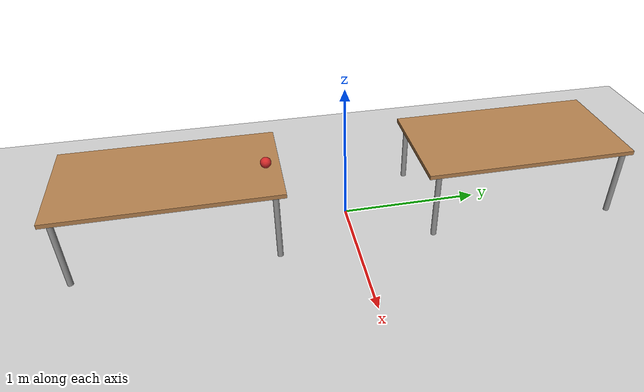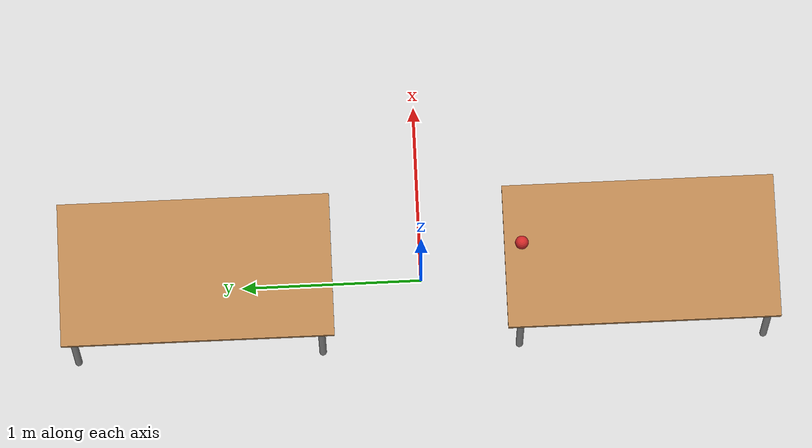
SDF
<sdf version="1.7">
 <world name="default">
  <model name="ground_plane">
   <static>1</static>
   <link name="link">
    <collision name="collision">
     <geometry><plane><normal>0 0 1</normal><size>100 100</size></plane></geometry>
     <surface>
      <contact><collide_bitmask>65535</collide_bitmask></contact>
      <friction><ode><mu>100</mu><mu2>50</mu2></ode></friction>
     </surface>
    </collision>
    <visual name="visual">
     <cast_shadows>0</cast_shadows>
     <geometry><plane><normal>0 0 1</normal><size>100 100</size></plane></geometry>
     <material>
      <script><uri>file://media/materials/scripts/gazebo.material</uri><name>Gazebo/Grey</name></script>
     </material>
    </visual>
   </link>
  </model>
  <light name="sun" type="directional">
   <pose>0 0 10 0 -0 0</pose>
   <diffuse>0.8 0.8 0.8 1</diffuse>
   <specular>0.2 0.2 0.2 1</specular>
   <attenuation>
    <range>1000</range>
    <constant>0.9</constant>
    <linear>0.01</linear>
    <quadratic>0.001</quadratic>
   </attenuation>
   <direction>-0.5 0.1 -0.9</direction>
   <spot><inner_angle>0</inner_angle><outer_angle>0</outer_angle><falloff>0</falloff></spot>
  </light>
  <physics name="default_physics" default="0" type="ode">
   <max_step_size>0.01</max_step_size>
   <real_time_factor>1</real_time_factor>
   <real_time_update_rate>100</real_time_update_rate>
   <ode>
    <solver>
     <type>quick</type>
     <iters>50</iters>
     <sor>1</sor>
     <use_dynamic_moi_rescaling>0</use_dynamic_moi_rescaling>
    </solver>
    <constraints>
     <cfm>0</cfm>
     <erp>0.2</erp>
     <contact_max_correcting_vel>100</contact_max_correcting_vel>
     <contact_surface_layer>0.001</contact_surface_layer>
    </constraints>
   </ode>
  </physics>
  <gravity>0 0 0</gravity>
  <magnetic_field>6e-06 2.3e-05 -4.2e-05</magnetic_field>
  <atmosphere type="adiabatic"/>
  <scene><ambient>0.4 0.4 0.4 1</ambient><background>0.7 0.7 0.7 1</background><shadows>1</shadows></scene>
  <spherical_coordinates>
   <surface_model>EARTH_WGS84</surface_model>
   <latitude_deg>0</latitude_deg>
   <longitude_deg>0</longitude_deg>
   <elevation>0</elevation>
   <heading_deg>0</heading_deg>
  </spherical_coordinates>
  <model name="table_short">
   <link name="link">
    <inertial>
     <mass>1</mass>
     <inertia><ixx>1</ixx><ixy>0</ixy><ixz>0</ixz><iyy>1</iyy><iyz>0</iyz><izz>1</izz></inertia>
    </inertial>
    <visual name="visual1">
     <pose>0 0 0.5 0 -0 0</pose>
     <geometry><box><size>1.5 0.8 0.03</size></box></geometry>
     <material>
      <script><uri>file://media/materials/scripts/gazebo.material</uri><name>Gazebo/Wood</name></script>
      <shader type="pixel"><normal_map>__default__</normal_map></shader>
      <ambient>1 1 1 1</ambient>
      <diffuse>1 1 1 1</diffuse>
      <specular>0.2 0.2 0.2 1</specular>
      <emissive>0 0 0 1</emissive>
     </material>
    </visual>
    <visual name="front_left_leg">
     <pose>0.68 0.38 0.25 0 -0 0</pose>
     <geometry><cylinder><radius>0.02</radius><length>0.5</length></cylinder></geometry>
     <material>
      <script><uri>file://media/materials/scripts/gazebo.material</uri><name>Gazebo/Grey</name></script>
      <shader type="pixel"><normal_map>__default__</normal_map></shader>
      <ambient>0.3 0.3 0.3 1</ambient>
      <diffuse>0.7 0.7 0.7 1</diffuse>
      <specular>0.01 0.01 0.01 1</specular>
      <emissive>0 0 0 1</emissive>
     </material>
    </visual>
    <visual name="front_right_leg">
     <pose>0.68 -0.38 0.25 0 -0 0</pose>
     <geometry><cylinder><radius>0.02</radius><length>0.5</length></cylinder></geometry>
     <material>
      <script><uri>file://media/materials/scripts/gazebo.material</uri><name>Gazebo/Grey</name></script>
      <shader type="pixel"><normal_map>__default__</normal_map></shader>
      <ambient>0.3 0.3 0.3 1</ambient>
      <diffuse>0.7 0.7 0.7 1</diffuse>
      <specular>0.01 0.01 0.01 1</specular>
      <emissive>0 0 0 1</emissive>
     </material>
    </visual>
    <visual name="back_right_leg">
     <pose>-0.68 -0.38 0.25 0 -0 0</pose>
     <geometry><cylinder><radius>0.02</radius><length>0.5</length></cylinder></geometry>
     <material>
      <script><uri>file://media/materials/scripts/gazebo.material</uri><name>Gazebo/Grey</name></script>
      <shader type="pixel"><normal_map>__default__</normal_map></shader>
      <ambient>0.3 0.3 0.3 1</ambient>
      <diffuse>0.7 0.7 0.7 1</diffuse>
      <specular>0.01 0.01 0.01 1</specular>
      <emissive>0 0 0 1</emissive>
     </material>
    </visual>
    <visual name="back_left_leg">
     <pose>-0.68 0.38 0.25 0 -0 0</pose>
     <geometry><cylinder><radius>0.02</radius><length>0.5</length></cylinder></geometry>
     <material>
      <script><uri>file://media/materials/scripts/gazebo.material</uri><name>Gazebo/Grey</name></script>
      <shader type="pixel"><normal_map>__default__</normal_map></shader>
      <ambient>0.3 0.3 0.3 1</ambient>
      <diffuse>0.7 0.7 0.7 1</diffuse>
      <specular>0.01 0.01 0.01 1</specular>
      <emissive>0 0 0 1</emissive>
     </material>
    </visual>
    <collision name="surface">
     <pose>0 0 1 0 -0 0</pose>
     <geometry><box><size>1.5 0.8 0.03</size></box></geometry>
     <surface>
      <friction>
       <ode><mu>0.6</mu><mu2>0.6</mu2><fdir1>0 0 0</fdir1><slip1>0</slip1><slip2>0</slip2></ode>
       <torsional>
        <coefficient>1</coefficient>
        <patch_radius>0</patch_radius>
        <surface_radius>0</surface_radius>
        <use_patch_radius>1</use_patch_radius>
        <ode><slip>0</slip></ode>
       </torsional>
      </friction>
      <bounce><restitution_coefficient>0</restitution_coefficient><threshold>1e+06</threshold></bounce>
      <contact>
       <collide_without_contact>0</collide_without_contact>
       <collide_without_contact_bitmask>1</collide_without_contact_bitmask>
       <collide_bitmask>1</collide_bitmask>
       <ode>
        <soft_cfm>0</soft_cfm>
        <soft_erp>0.2</soft_erp>
        <kp>1e+13</kp>
        <kd>1</kd>
        <max_vel>0.01</max_vel>
        <min_depth>0</min_depth>
       </ode>
       <bullet>
        <split_impulse>1</split_impulse>
        <split_impulse_penetration_threshold>-0.01</split_impulse_penetration_threshold>
        <soft_cfm>0</soft_cfm>
        <soft_erp>0.2</soft_erp>
        <kp>1e+13</kp>
        <kd>1</kd>
       </bullet>
      </contact>
     </surface>
    </collision>
    <collision name="front_right_leg">
     <pose>0.68 -0.38 0.5 0 -0 0</pose>
     <geometry><cylinder><radius>0.02</radius><length>1</length></cylinder></geometry>
     <surface>
      <friction>
       <ode><mu>1</mu><mu2>1</mu2><fdir1>0 0 0</fdir1><slip1>0</slip1><slip2>0</slip2></ode>
       <torsional>
        <coefficient>1</coefficient>
        <patch_radius>0</patch_radius>
        <surface_radius>0</surface_radius>
        <use_patch_radius>1</use_patch_radius>
        <ode><slip>0</slip></ode>
       </torsional>
      </friction>
      <bounce><restitution_coefficient>0</restitution_coefficient><threshold>1e+06</threshold></bounce>
      <contact>
       <collide_without_contact>0</collide_without_contact>
       <collide_without_contact_bitmask>1</collide_without_contact_bitmask>
       <collide_bitmask>1</collide_bitmask>
       <ode>
        <soft_cfm>0</soft_cfm>
        <soft_erp>0.2</soft_erp>
        <kp>1e+13</kp>
        <kd>1</kd>
        <max_vel>0.01</max_vel>
        <min_depth>0</min_depth>
       </ode>
       <bullet>
        <split_impulse>1</split_impulse>
        <split_impulse_penetration_threshold>-0.01</split_impulse_penetration_threshold>
        <soft_cfm>0</soft_cfm>
        <soft_erp>0.2</soft_erp>
        <kp>1e+13</kp>
        <kd>1</kd>
       </bullet>
      </contact>
     </surface>
    </collision>
    <collision name="front_left_leg">
     <pose>0.68 0.38 0.5 0 -0 0</pose>
     <geometry><cylinder><radius>0.02</radius><length>1</length></cylinder></geometry>
     <surface>
      <friction>
       <ode><mu>1</mu><mu2>1</mu2><fdir1>0 0 0</fdir1><slip1>0</slip1><slip2>0</slip2></ode>
       <torsional>
        <coefficient>1</coefficient>
        <patch_radius>0</patch_radius>
        <surface_radius>0</surface_radius>
        <use_patch_radius>1</use_patch_radius>
        <ode><slip>0</slip></ode>
       </torsional>
      </friction>
      <bounce><restitution_coefficient>0</restitution_coefficient><threshold>1e+06</threshold></bounce>
      <contact>
       <collide_without_contact>0</collide_without_contact>
       <collide_without_contact_bitmask>1</collide_without_contact_bitmask>
       <collide_bitmask>1</collide_bitmask>
       <ode>
        <soft_cfm>0</soft_cfm>
        <soft_erp>0.2</soft_erp>
        <kp>1e+13</kp>
        <kd>1</kd>
        <max_vel>0.01</max_vel>
        <min_depth>0</min_depth>
       </ode>
       <bullet>
        <split_impulse>1</split_impulse>
        <split_impulse_penetration_threshold>-0.01</split_impulse_penetration_threshold>
        <soft_cfm>0</soft_cfm>
        <soft_erp>0.2</soft_erp>
        <kp>1e+13</kp>
        <kd>1</kd>
       </bullet>
      </contact>
     </surface>
    </collision>
    <collision name="back_right_leg">
     <pose>-0.68 -0.38 0.5 0 -0 0</pose>
     <geometry><cylinder><radius>0.02</radius><length>1</length></cylinder></geometry>
     <surface>
      <friction>
       <ode><mu>1</mu><mu2>1</mu2><fdir1>0 0 0</fdir1><slip1>0</slip1><slip2>0</slip2></ode>
       <torsional>
        <coefficient>1</coefficient>
        <patch_radius>0</patch_radius>
        <surface_radius>0</surface_radius>
        <use_patch_radius>1</use_patch_radius>
        <ode><slip>0</slip></ode>
       </torsional>
      </friction>
      <bounce><restitution_coefficient>0</restitution_coefficient><threshold>1e+06</threshold></bounce>
      <contact>
       <collide_without_contact>0</collide_without_contact>
       <collide_without_contact_bitmask>1</collide_without_contact_bitmask>
       <collide_bitmask>1</collide_bitmask>
       <ode>
        <soft_cfm>0</soft_cfm>
        <soft_erp>0.2</soft_erp>
        <kp>1e+13</kp>
        <kd>1</kd>
        <max_vel>0.01</max_vel>
        <min_depth>0</min_depth>
       </ode>
       <bullet>
        <split_impulse>1</split_impulse>
        <split_impulse_penetration_threshold>-0.01</split_impulse_penetration_threshold>
        <soft_cfm>0</soft_cfm>
        <soft_erp>0.2</soft_erp>
        <kp>1e+13</kp>
        <kd>1</kd>
       </bullet>
      </contact>
     </surface>
    </collision>
    <collision name="back_left_leg">
     <pose>-0.68 0.38 0.5 0 -0 0</pose>
     <geometry><cylinder><radius>0.02</radius><length>1</length></cylinder></geometry>
     <surface>
      <friction>
       <ode><mu>1</mu><mu2>1</mu2><fdir1>0 0 0</fdir1><slip1>0</slip1><slip2>0</slip2></ode>
       <torsional>
        <coefficient>1</coefficient>
        <patch_radius>0</patch_radius>
        <surface_radius>0</surface_radius>
        <use_patch_radius>1</use_patch_radius>
        <ode><slip>0</slip></ode>
       </torsional>
      </friction>
      <bounce><restitution_coefficient>0</restitution_coefficient><threshold>1e+06</threshold></bounce>
      <contact>
       <collide_without_contact>0</collide_without_contact>
       <collide_without_contact_bitmask>1</collide_without_contact_bitmask>
       <collide_bitmask>1</collide_bitmask>
       <ode>
        <soft_cfm>0</soft_cfm>
        <soft_erp>0.2</soft_erp>
        <kp>1e+13</kp>
        <kd>1</kd>
        <max_vel>0.01</max_vel>
        <min_depth>0</min_depth>
       </ode>
       <bullet>
        <split_impulse>1</split_impulse>
        <split_impulse_penetration_threshold>-0.01</split_impulse_penetration_threshold>
        <soft_cfm>0</soft_cfm>
        <soft_erp>0.2</soft_erp>
        <kp>1e+13</kp>
        <kd>1</kd>
       </bullet>
      </contact>
     </surface>
    </collision>
   </link>
   <static>1</static>
   <pose>0 -1.21095 0 0 0 -1.5708</pose>
  </model>
  <model name="cricket_ball_movedpos">
   <link name="link">
    <pose>0.0913 -0.328534 0.559926 0 -0 0</pose>
    <inertial>
     <mass>0.1467</mass>
     <inertia>
      <ixx>8.252e-05</ixx>
      <ixy>0</ixy>
      <ixz>0</ixz>
      <iyy>8.252e-05</iyy>
      <iyz>0</iyz>
      <izz>8.252e-05</izz>
     </inertia>
     <pose>0 0 0.5 0 -0 0</pose>
    </inertial>
    <velocity_decay><linear>0</linear><angular>0.005</angular></velocity_decay>
    <visual name="visual">
     <geometry><sphere><radius>0.0375</radius></sphere></geometry>
     <material>
      <script><uri>file://media/materials/scripts/gazebo.material</uri><name>Gazebo/Red</name></script>
      <shader type="pixel"><normal_map>__default__</normal_map></shader>
      <ambient>1 0 0 1</ambient>
      <diffuse>1 0 0 1</diffuse>
      <specular>0.1 0.1 0.1 1</specular>
      <emissive>0 0 0 1</emissive>
     </material>
    </visual>
    <collision name="collision">
     <geometry><sphere><radius>0.0375</radius></sphere></geometry>
     <surface>
      <friction>
       <ode><mu>1</mu><mu2>1</mu2><fdir1>0 0 0</fdir1><slip1>0</slip1><slip2>0</slip2></ode>
       <torsional>
        <coefficient>1</coefficient>
        <patch_radius>0</patch_radius>
        <surface_radius>0.01</surface_radius>
        <use_patch_radius>0</use_patch_radius>
        <ode><slip>0</slip></ode>
       </torsional>
      </friction>
      <bounce><restitution_coefficient>0</restitution_coefficient><threshold>1e+06</threshold></bounce>
      <contact>
       <collide_without_contact>0</collide_without_contact>
       <collide_without_contact_bitmask>1</collide_without_contact_bitmask>
       <collide_bitmask>1</collide_bitmask>
       <ode>
        <soft_cfm>0</soft_cfm>
        <soft_erp>0.2</soft_erp>
        <kp>100000</kp>
        <kd>100</kd>
        <max_vel>100</max_vel>
        <min_depth>0.001</min_depth>
       </ode>
       <bullet>
        <split_impulse>1</split_impulse>
        <split_impulse_penetration_threshold>-0.01</split_impulse_penetration_threshold>
        <soft_cfm>0</soft_cfm>
        <soft_erp>0.2</soft_erp>
        <kp>100000</kp>
        <kd>100</kd>
       </bullet>
      </contact>
     </surface>
    </collision>
   </link>
   <static>0</static>
   <pose>-0.026998 -0.228177 -0.00599 0 -0 0</pose>
  </model>
  <model name="table_short_0">
   <link name="link">
    <inertial>
     <mass>1</mass>
     <inertia><ixx>1</ixx><ixy>0</ixy><ixz>0</ixz><iyy>1</iyy><iyz>0</iyz><izz>1</izz></inertia>
    </inertial>
    <visual name="visual1">
     <pose>0 0 0.5 0 -0 0</pose>
     <geometry><box><size>1.5 0.8 0.03</size></box></geometry>
     <material>
      <script><uri>file://media/materials/scripts/gazebo.material</uri><name>Gazebo/Wood</name></script>
      <shader type="pixel"><normal_map>__default__</normal_map></shader>
      <ambient>1 1 1 1</ambient>
      <diffuse>1 1 1 1</diffuse>
      <specular>0.2 0.2 0.2 1</specular>
      <emissive>0 0 0 1</emissive>
     </material>
    </visual>
    <visual name="front_left_leg">
     <pose>0.68 0.38 0.25 0 -0 0</pose>
     <geometry><cylinder><radius>0.02</radius><length>0.5</length></cylinder></geometry>
     <material>
      <script><uri>file://media/materials/scripts/gazebo.material</uri><name>Gazebo/Grey</name></script>
      <shader type="pixel"><normal_map>__default__</normal_map></shader>
      <ambient>0.3 0.3 0.3 1</ambient>
      <diffuse>0.7 0.7 0.7 1</diffuse>
      <specular>0.01 0.01 0.01 1</specular>
      <emissive>0 0 0 1</emissive>
     </material>
    </visual>
    <visual name="front_right_leg">
     <pose>0.68 -0.38 0.25 0 -0 0</pose>
     <geometry><cylinder><radius>0.02</radius><length>0.5</length></cylinder></geometry>
     <material>
      <script><uri>file://media/materials/scripts/gazebo.material</uri><name>Gazebo/Grey</name></script>
      <shader type="pixel"><normal_map>__default__</normal_map></shader>
      <ambient>0.3 0.3 0.3 1</ambient>
      <diffuse>0.7 0.7 0.7 1</diffuse>
      <specular>0.01 0.01 0.01 1</specular>
      <emissive>0 0 0 1</emissive>
     </material>
    </visual>
    <visual name="back_right_leg">
     <pose>-0.68 -0.38 0.25 0 -0 0</pose>
     <geometry><cylinder><radius>0.02</radius><length>0.5</length></cylinder></geometry>
     <material>
      <script><uri>file://media/materials/scripts/gazebo.material</uri><name>Gazebo/Grey</name></script>
      <shader type="pixel"><normal_map>__default__</normal_map></shader>
      <ambient>0.3 0.3 0.3 1</ambient>
      <diffuse>0.7 0.7 0.7 1</diffuse>
      <specular>0.01 0.01 0.01 1</specular>
      <emissive>0 0 0 1</emissive>
     </material>
    </visual>
    <visual name="back_left_leg">
     <pose>-0.68 0.38 0.25 0 -0 0</pose>
     <geometry><cylinder><radius>0.02</radius><length>0.5</length></cylinder></geometry>
     <material>
      <script><uri>file://media/materials/scripts/gazebo.material</uri><name>Gazebo/Grey</name></script>
      <shader type="pixel"><normal_map>__default__</normal_map></shader>
      <ambient>0.3 0.3 0.3 1</ambient>
      <diffuse>0.7 0.7 0.7 1</diffuse>
      <specular>0.01 0.01 0.01 1</specular>
      <emissive>0 0 0 1</emissive>
     </material>
    </visual>
    <collision name="surface">
     <pose>0 0 1 0 -0 0</pose>
     <geometry><box><size>1.5 0.8 0.03</size></box></geometry>
     <surface>
      <friction>
       <ode><mu>0.6</mu><mu2>0.6</mu2><fdir1>0 0 0</fdir1><slip1>0</slip1><slip2>0</slip2></ode>
       <torsional>
        <coefficient>1</coefficient>
        <patch_radius>0</patch_radius>
        <surface_radius>0</surface_radius>
        <use_patch_radius>1</use_patch_radius>
        <ode><slip>0</slip></ode>
       </torsional>
      </friction>
      <bounce><restitution_coefficient>0</restitution_coefficient><threshold>1e+06</threshold></bounce>
      <contact>
       <collide_without_contact>0</collide_without_contact>
       <collide_without_contact_bitmask>1</collide_without_contact_bitmask>
       <collide_bitmask>1</collide_bitmask>
       <ode>
        <soft_cfm>0</soft_cfm>
        <soft_erp>0.2</soft_erp>
        <kp>1e+13</kp>
        <kd>1</kd>
        <max_vel>0.01</max_vel>
        <min_depth>0</min_depth>
       </ode>
       <bullet>
        <split_impulse>1</split_impulse>
        <split_impulse_penetration_threshold>-0.01</split_impulse_penetration_threshold>
        <soft_cfm>0</soft_cfm>
        <soft_erp>0.2</soft_erp>
        <kp>1e+13</kp>
        <kd>1</kd>
       </bullet>
      </contact>
     </surface>
    </collision>
    <collision name="front_right_leg">
     <pose>0.68 -0.38 0.5 0 -0 0</pose>
     <geometry><cylinder><radius>0.02</radius><length>1</length></cylinder></geometry>
     <surface>
      <friction>
       <ode><mu>1</mu><mu2>1</mu2><fdir1>0 0 0</fdir1><slip1>0</slip1><slip2>0</slip2></ode>
       <torsional>
        <coefficient>1</coefficient>
        <patch_radius>0</patch_radius>
        <surface_radius>0</surface_radius>
        <use_patch_radius>1</use_patch_radius>
        <ode><slip>0</slip></ode>
       </torsional>
      </friction>
      <bounce><restitution_coefficient>0</restitution_coefficient><threshold>1e+06</threshold></bounce>
      <contact>
       <collide_without_contact>0</collide_without_contact>
       <collide_without_contact_bitmask>1</collide_without_contact_bitmask>
       <collide_bitmask>1</collide_bitmask>
       <ode>
        <soft_cfm>0</soft_cfm>
        <soft_erp>0.2</soft_erp>
        <kp>1e+13</kp>
        <kd>1</kd>
        <max_vel>0.01</max_vel>
        <min_depth>0</min_depth>
       </ode>
       <bullet>
        <split_impulse>1</split_impulse>
        <split_impulse_penetration_threshold>-0.01</split_impulse_penetration_threshold>
        <soft_cfm>0</soft_cfm>
        <soft_erp>0.2</soft_erp>
        <kp>1e+13</kp>
        <kd>1</kd>
       </bullet>
      </contact>
     </surface>
    </collision>
    <collision name="front_left_leg">
     <pose>0.68 0.38 0.5 0 -0 0</pose>
     <geometry><cylinder><radius>0.02</radius><length>1</length></cylinder></geometry>
     <surface>
      <friction>
       <ode><mu>1</mu><mu2>1</mu2><fdir1>0 0 0</fdir1><slip1>0</slip1><slip2>0</slip2></ode>
       <torsional>
        <coefficient>1</coefficient>
        <patch_radius>0</patch_radius>
        <surface_radius>0</surface_radius>
        <use_patch_radius>1</use_patch_radius>
        <ode><slip>0</slip></ode>
       </torsional>
      </friction>
      <bounce><restitution_coefficient>0</restitution_coefficient><threshold>1e+06</threshold></bounce>
      <contact>
       <collide_without_contact>0</collide_without_contact>
       <collide_without_contact_bitmask>1</collide_without_contact_bitmask>
       <collide_bitmask>1</collide_bitmask>
       <ode>
        <soft_cfm>0</soft_cfm>
        <soft_erp>0.2</soft_erp>
        <kp>1e+13</kp>
        <kd>1</kd>
        <max_vel>0.01</max_vel>
        <min_depth>0</min_depth>
       </ode>
       <bullet>
        <split_impulse>1</split_impulse>
        <split_impulse_penetration_threshold>-0.01</split_impulse_penetration_threshold>
        <soft_cfm>0</soft_cfm>
        <soft_erp>0.2</soft_erp>
        <kp>1e+13</kp>
        <kd>1</kd>
       </bullet>
      </contact>
     </surface>
    </collision>
    <collision name="back_right_leg">
     <pose>-0.68 -0.38 0.5 0 -0 0</pose>
     <geometry><cylinder><radius>0.02</radius><length>1</length></cylinder></geometry>
     <surface>
      <friction>
       <ode><mu>1</mu><mu2>1</mu2><fdir1>0 0 0</fdir1><slip1>0</slip1><slip2>0</slip2></ode>
       <torsional>
        <coefficient>1</coefficient>
        <patch_radius>0</patch_radius>
        <surface_radius>0</surface_radius>
        <use_patch_radius>1</use_patch_radius>
        <ode><slip>0</slip></ode>
       </torsional>
      </friction>
      <bounce><restitution_coefficient>0</restitution_coefficient><threshold>1e+06</threshold></bounce>
      <contact>
       <collide_without_contact>0</collide_without_contact>
       <collide_without_contact_bitmask>1</collide_without_contact_bitmask>
       <collide_bitmask>1</collide_bitmask>
       <ode>
        <soft_cfm>0</soft_cfm>
        <soft_erp>0.2</soft_erp>
        <kp>1e+13</kp>
        <kd>1</kd>
        <max_vel>0.01</max_vel>
        <min_depth>0</min_depth>
       </ode>
       <bullet>
        <split_impulse>1</split_impulse>
        <split_impulse_penetration_threshold>-0.01</split_impulse_penetration_threshold>
        <soft_cfm>0</soft_cfm>
        <soft_erp>0.2</soft_erp>
        <kp>1e+13</kp>
        <kd>1</kd>
       </bullet>
      </contact>
     </surface>
    </collision>
    <collision name="back_left_leg">
     <pose>-0.68 0.38 0.5 0 -0 0</pose>
     <geometry><cylinder><radius>0.02</radius><length>1</length></cylinder></geometry>
     <surface>
      <friction>
       <ode><mu>1</mu><mu2>1</mu2><fdir1>0 0 0</fdir1><slip1>0</slip1><slip2>0</slip2></ode>
       <torsional>
        <coefficient>1</coefficient>
        <patch_radius>0</patch_radius>
        <surface_radius>0</surface_radius>
        <use_patch_radius>1</use_patch_radius>
        <ode><slip>0</slip></ode>
       </torsional>
      </friction>
      <bounce><restitution_coefficient>0</restitution_coefficient><threshold>1e+06</threshold></bounce>
      <contact>
       <collide_without_contact>0</collide_without_contact>
       <collide_without_contact_bitmask>1</collide_without_contact_bitmask>
       <collide_bitmask>1</collide_bitmask>
       <ode>
        <soft_cfm>0</soft_cfm>
        <soft_erp>0.2</soft_erp>
        <kp>1e+13</kp>
        <kd>1</kd>
        <max_vel>0.01</max_vel>
        <min_depth>0</min_depth>
       </ode>
       <bullet>
        <split_impulse>1</split_impulse>
        <split_impulse_penetration_threshold>-0.01</split_impulse_penetration_threshold>
        <soft_cfm>0</soft_cfm>
        <soft_erp>0.2</soft_erp>
        <kp>1e+13</kp>
        <kd>1</kd>
       </bullet>
      </contact>
     </surface>
    </collision>
   </link>
   <static>1</static>
   <pose>0 1.24267 0 0 0 -1.5708</pose>
  </model>
 </world>
</sdf>
